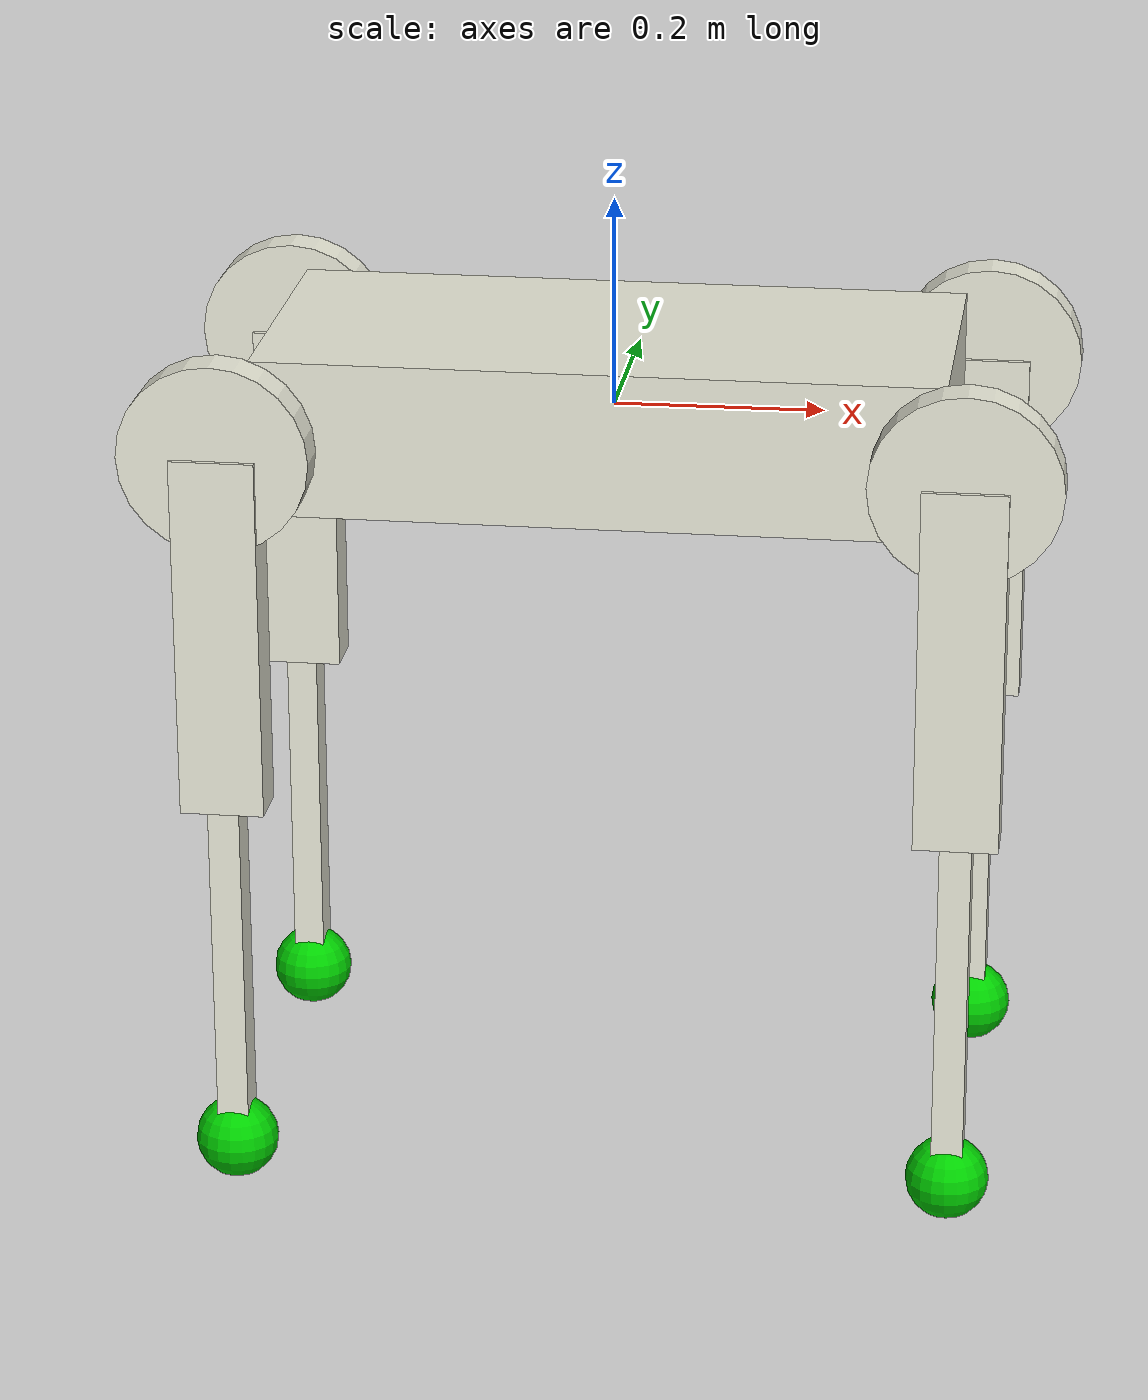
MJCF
<?xml version='1.0' encoding='UTF-8'?>
<mujoco model="b1_description">
  <compiler angle="radian"/>
  <worldbody>
    <body name="base">
      <body name="trunk">
        <inertial pos="0.008465 0.004045 -0.000763" quat="-2.12791e-05 0.708321 0.00248043 0.705886" mass="9.041" diaginertia="0.174606 0.161174 0.033257"/>
        <geom size="0.3235 0.15 0.075" type="box" rgba="0.913725 0.913725 0.847059 1"/>
        <body name="imu_link">
          <inertial pos="0 0 0" quat="0.707107 0.707107 0 0" mass="0.001" diaginertia="0.0001 0.0001 1e-06"/>
          <geom size="0.0005 0.0005 0.0005" type="box" rgba="0.8 0 0 1"/>
        </body>
        <body name="FR_hip" pos="0.3455 -0.072 0">
          <inertial pos="-0.022191 -0.015144 -1.5e-05" quat="0.0135493 0.706835 -0.0117635 0.707151" mass="1.993" diaginertia="0.00558695 0.00491009 0.00290132"/>
          <joint name="FR_hip_joint" pos="0 0 0" axis="1 0 0" range="-0.75 0.75" actuatorfrcrange="-100 100"/>
          <geom size="0.09 0.02" pos="0 -0.12675 0" quat="0.707107 0.707107 0 0" type="cylinder" rgba="0.913725 0.913725 0.847059 1"/>
          <body name="FR_thigh" pos="0 -0.12675 0">
            <inertial pos="-0.005607 0.003877 -0.048199" quat="0.694544 -0.0335669 -0.031246 0.717987" mass="0.639" diaginertia="0.0058474 0.00571186 0.000324584"/>
            <joint name="FR_thigh_joint" pos="0 0 0" axis="0 1 0" range="-1 3.5" actuatorfrcrange="-100 100"/>
            <geom size="0.175 0.025 0.04" pos="0 0 -0.175" quat="0.707107 0 0.707107 0" type="box" rgba="0.913725 0.913725 0.847059 1"/>
            <body name="FR_calf" pos="0 0 -0.35">
              <inertial pos="0.002781 6.3e-05 -0.142518" quat="0.707529 0.00485486 0.00501053 0.70665" mass="0.207" diaginertia="0.00635516 0.0063426 3.79605e-05"/>
              <joint name="FR_calf_joint" pos="0 0 0" axis="0 1 0" range="-2.6 -0.6" actuatorfrcrange="-100 100"/>
              <geom size="0.175 0.02 0.015" pos="0 0 -0.175" quat="0.707107 0 0.707107 0" type="box" rgba="0.913725 0.913725 0.847059 1"/>
              <body name="FR_foot" pos="0 0 -0.35">
                <inertial pos="0 0 0" mass="0.06" diaginertia="3.84e-05 3.84e-05 3.84e-05"/>
                <geom size="0.04" rgba="0 0.8 0 1"/>
              </body>
            </body>
          </body>
        </body>
        <body name="FL_hip" pos="0.3455 0.072 0">
          <inertial pos="-0.022191 0.015144 -1.5e-05" quat="-0.0135493 0.706835 0.0117635 0.707151" mass="1.993" diaginertia="0.00558695 0.00491009 0.00290132"/>
          <joint name="FL_hip_joint" pos="0 0 0" axis="1 0 0" range="-0.75 0.75" actuatorfrcrange="-100 100"/>
          <geom size="0.09 0.02" pos="0 0.12675 0" quat="0.707107 0.707107 0 0" type="cylinder" rgba="0.913725 0.913725 0.847059 1"/>
          <body name="FL_thigh" pos="0 0.12675 0">
            <inertial pos="-0.005607 -0.003877 -0.048199" quat="0.717987 -0.031246 -0.0335669 0.694544" mass="0.639" diaginertia="0.0058474 0.00571186 0.000324584"/>
            <joint name="FL_thigh_joint" pos="0 0 0" axis="0 1 0" range="-1 3.5" actuatorfrcrange="-100 100"/>
            <geom size="0.175 0.025 0.04" pos="0 0 -0.175" quat="0.707107 0 0.707107 0" type="box" rgba="0.913725 0.913725 0.847059 1"/>
            <body name="FL_calf" pos="0 0 -0.35">
              <inertial pos="0.002781 6.3e-05 -0.142518" quat="0.707529 0.00485486 0.00501053 0.70665" mass="0.207" diaginertia="0.00635516 0.0063426 3.79605e-05"/>
              <joint name="FL_calf_joint" pos="0 0 0" axis="0 1 0" range="-2.6 -0.6" actuatorfrcrange="-100 100"/>
              <geom size="0.175 0.02 0.015" pos="0 0 -0.175" quat="0.707107 0 0.707107 0" type="box" rgba="0.913725 0.913725 0.847059 1"/>
              <body name="FL_foot" pos="0 0 -0.35">
                <inertial pos="0 0 0" mass="0.06" diaginertia="3.84e-05 3.84e-05 3.84e-05"/>
                <geom size="0.04" rgba="0 0.8 0 1"/>
              </body>
            </body>
          </body>
        </body>
        <body name="RR_hip" pos="-0.3455 -0.072 0">
          <inertial pos="0.022191 -0.015144 -1.5e-05" quat="-0.0117635 0.707151 0.0135493 0.706835" mass="1.993" diaginertia="0.00558695 0.00491009 0.00290132"/>
          <joint name="RR_hip_joint" pos="0 0 0" axis="1 0 0" range="-0.75 0.75" actuatorfrcrange="-100 100"/>
          <geom size="0.09 0.02" pos="0 -0.12675 0" quat="0.707107 0.707107 0 0" type="cylinder" rgba="0.913725 0.913725 0.847059 1"/>
          <body name="RR_thigh" pos="0 -0.12675 0">
            <inertial pos="-0.005607 0.003877 -0.048199" quat="0.694544 -0.0335669 -0.031246 0.717987" mass="0.639" diaginertia="0.0058474 0.00571186 0.000324584"/>
            <joint name="RR_thigh_joint" pos="0 0 0" axis="0 1 0" range="-1 3.5" actuatorfrcrange="-100 100"/>
            <geom size="0.175 0.025 0.04" pos="0 0 -0.175" quat="0.707107 0 0.707107 0" type="box" rgba="0.913725 0.913725 0.847059 1"/>
            <body name="RR_calf" pos="0 0 -0.35">
              <inertial pos="0.002781 6.3e-05 -0.142518" quat="0.707529 0.00485486 0.00501053 0.70665" mass="0.207" diaginertia="0.00635516 0.0063426 3.79605e-05"/>
              <joint name="RR_calf_joint" pos="0 0 0" axis="0 1 0" range="-2.6 -0.6" actuatorfrcrange="-100 100"/>
              <geom size="0.175 0.02 0.015" pos="0 0 -0.175" quat="0.707107 0 0.707107 0" type="box" rgba="0.913725 0.913725 0.847059 1"/>
              <body name="RR_foot" pos="0 0 -0.35">
                <inertial pos="0 0 0" mass="0.06" diaginertia="3.84e-05 3.84e-05 3.84e-05"/>
                <geom size="0.04" rgba="0 0.8 0 1"/>
              </body>
            </body>
          </body>
        </body>
        <body name="RL_hip" pos="-0.3455 0.072 0">
          <inertial pos="0.022191 0.015144 -1.5e-05" quat="0.0117635 0.707151 -0.0135493 0.706835" mass="1.993" diaginertia="0.00558695 0.00491009 0.00290132"/>
          <joint name="RL_hip_joint" pos="0 0 0" axis="1 0 0" range="-0.75 0.75" actuatorfrcrange="-100 100"/>
          <geom size="0.09 0.02" pos="0 0.12675 0" quat="0.707107 0.707107 0 0" type="cylinder" rgba="0.913725 0.913725 0.847059 1"/>
          <body name="RL_thigh" pos="0 0.12675 0">
            <inertial pos="-0.005607 -0.003877 -0.048199" quat="0.717987 -0.031246 -0.0335669 0.694544" mass="0.639" diaginertia="0.0058474 0.00571186 0.000324584"/>
            <joint name="RL_thigh_joint" pos="0 0 0" axis="0 1 0" range="-1 3.5" actuatorfrcrange="-100 100"/>
            <geom size="0.175 0.025 0.04" pos="0 0 -0.175" quat="0.707107 0 0.707107 0" type="box" rgba="0.913725 0.913725 0.847059 1"/>
            <body name="RL_calf" pos="0 0 -0.35">
              <inertial pos="0.002781 6.3e-05 -0.142518" quat="0.707529 0.00485486 0.00501053 0.70665" mass="0.207" diaginertia="0.00635516 0.0063426 3.79605e-05"/>
              <joint name="RL_calf_joint" pos="0 0 0" axis="0 1 0" range="-2.6 -0.6" actuatorfrcrange="-100 100"/>
              <geom size="0.175 0.02 0.015" pos="0 0 -0.175" quat="0.707107 0 0.707107 0" type="box" rgba="0.913725 0.913725 0.847059 1"/>
              <body name="RL_foot" pos="0 0 -0.35">
                <inertial pos="0 0 0" mass="0.06" diaginertia="3.84e-05 3.84e-05 3.84e-05"/>
                <geom size="0.04" rgba="0 0.8 0 1"/>
              </body>
            </body>
          </body>
        </body>
      </body>
    </body>
  </worldbody>
</mujoco>
